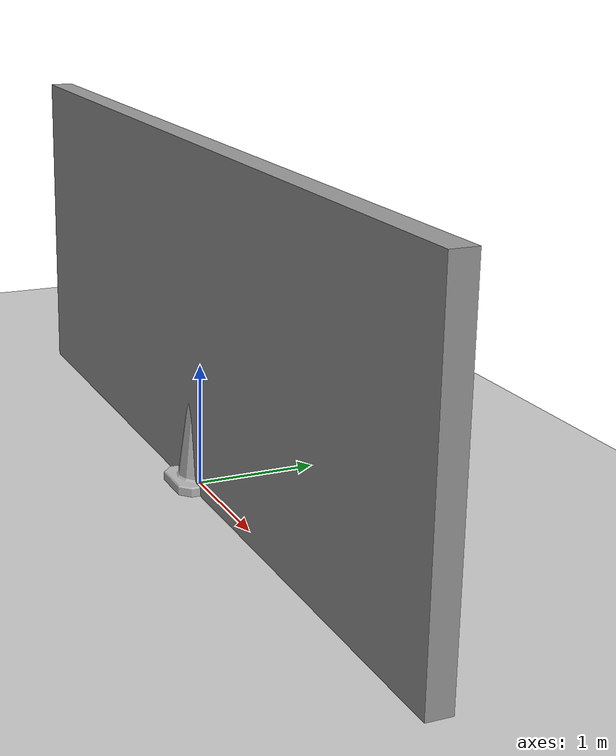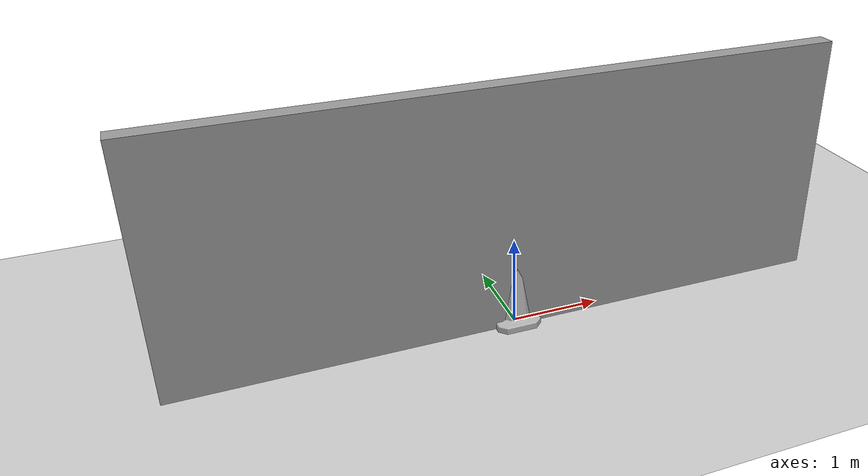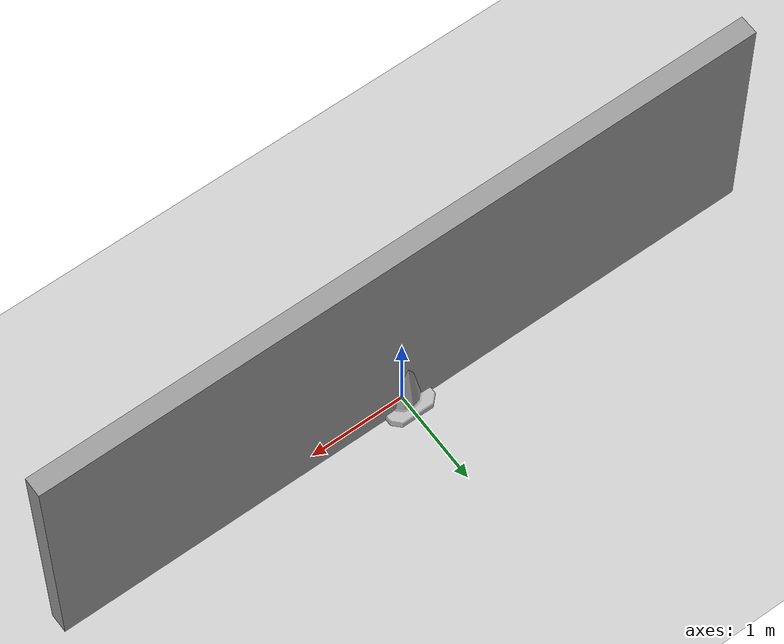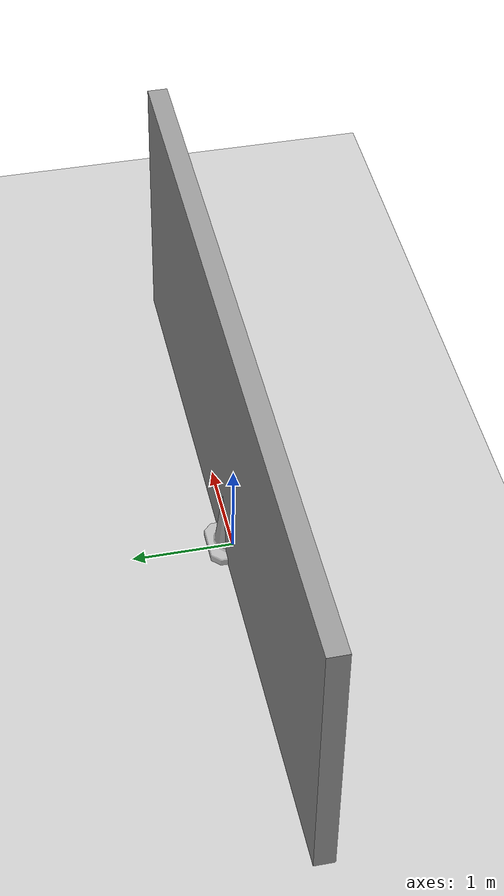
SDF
<sdf version="1.6">
 <world name="default">
  <include><uri>model://ground_plane</uri></include>
  <include><uri>model://sun</uri></include>
  <include><uri>model://construction_cone</uri></include>
  <include><uri>model://grey_wall</uri></include>
  <include><uri>model://asphalt_plane</uri></include>
  <gravity>0 0 -9.8</gravity>
  <model name="post">
   <pose>0 0 0.6 0 0 0</pose>
   <link name="link">
    <collision name="collision"><geometry><box><size>0.2 0.2 .9</size></box></geometry></collision>
    <sensor name="logical_camera" type="logical_camera">
     <pose>0 0 0.45 0 0 0</pose>
     <logical_camera>
      <near>0.55</near>
      <far>2.5</far>
      <horizontal_fov>1.05</horizontal_fov>
      <aspect_ratio>1.8</aspect_ratio>
     </logical_camera>
     <visualize>true</visualize>
     <always_on>true</always_on>
     <update_rate>10</update_rate>
    </sensor>
   </link>
  </model>
 </world>
</sdf>

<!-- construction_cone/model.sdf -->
<sdf version="1.5">
  <model name="Construction Cone">
    <link name="link">
      <collision name="collision">
        <geometry>
          <mesh>
            <scale>10 10 10</scale>
            <uri>file://isr-testbed/construction_cone/meshes/construction_cone.dae</uri>
          </mesh>
        </geometry>
      </collision>
      <visual name="visual">
        <geometry>
          <mesh>
            <scale>10 10 10</scale>
            <uri>file://isr-testbed/construction_cone/meshes/construction_cone.dae</uri>
          </mesh>
        </geometry>
      </visual>
    </link>
  </model>
</sdf>

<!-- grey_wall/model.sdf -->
<sdf version="1.5">
  <model name="grey_wall">
    <static>true</static>
    <link name="link">
      <pose>0 0 1.4 0 0 0</pose>
      <collision name="collision">
        <geometry>
          <box>
            <size>7.5 0.2 2.8</size>
          </box>
        </geometry>
      </collision>
      <visual name="visual">
        <cast_shadows>false</cast_shadows>
        <geometry>
          <box>
            <size>7.5 0.2 2.8</size>
          </box>
        </geometry>
        <material>
          <script>
            <uri>model://../model_source/models/grey_wall/materials/scripts</uri>
            <uri>model://../model_source/models/grey_wall/materials/textures</uri>
            <name>vrc/grey_wall</name>
          </script>
        </material>
      </visual>
    </link>
  </model>
</sdf>
